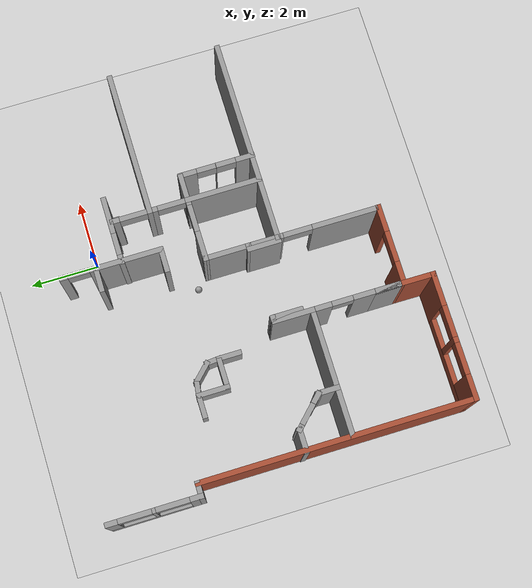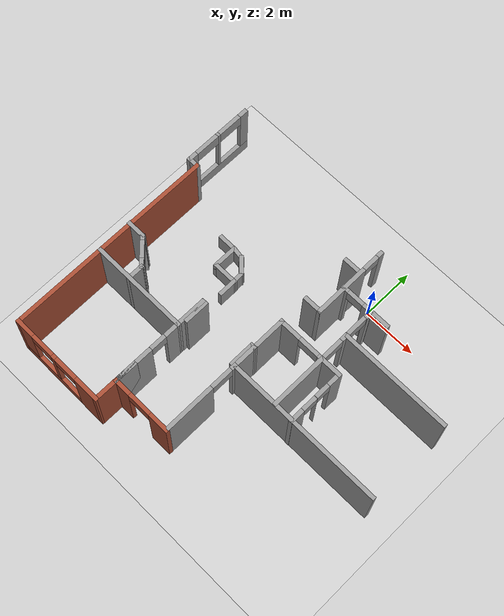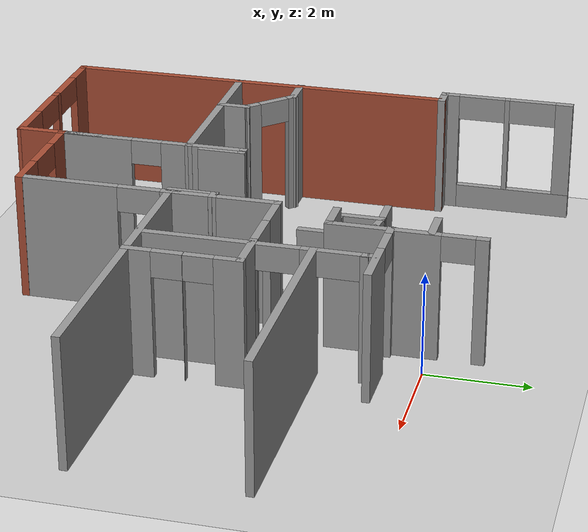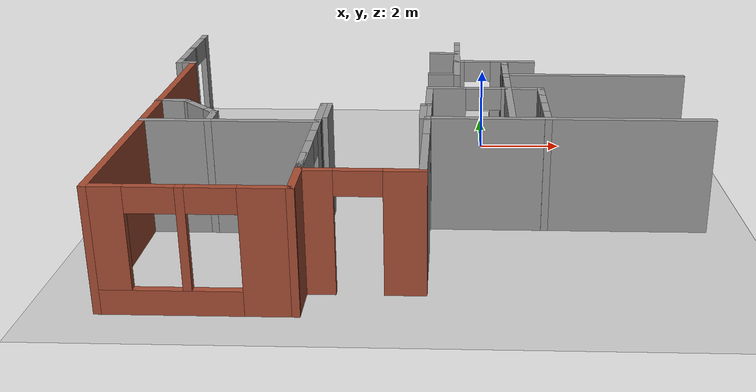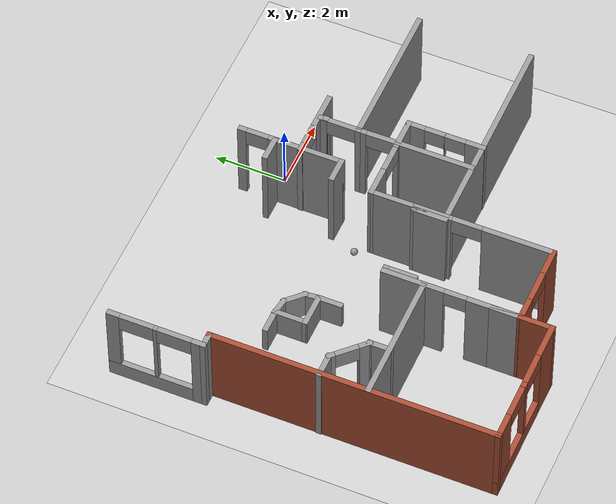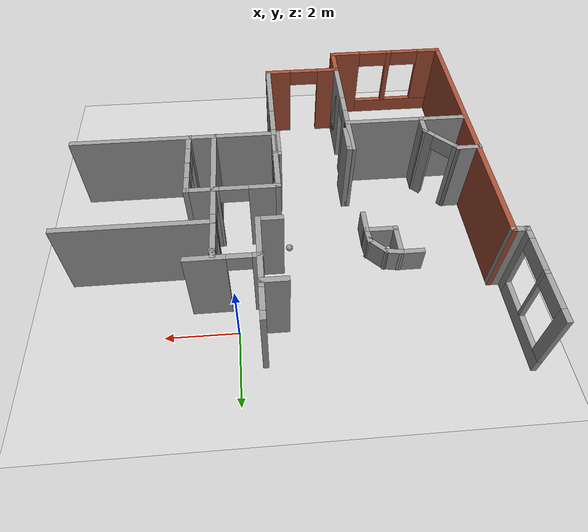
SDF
<sdf version="1.6">
 <world name="default">
  <model name="ground_plane">
   <static>1</static>
   <link name="link">
    <collision name="collision">
     <geometry><plane><normal>0 0 1</normal><size>100 100</size></plane></geometry>
     <surface><friction><ode><mu>100</mu><mu2>50</mu2></ode></friction></surface>
    </collision>
    <visual name="visual">
     <cast_shadows>0</cast_shadows>
     <geometry><plane><normal>0 0 1</normal><size>100 100</size></plane></geometry>
     <material>
      <script><uri>file://media/materials/scripts/gazebo.material</uri><name>Gazebo/Grey</name></script>
     </material>
    </visual>
   </link>
  </model>
  <model name="Winter_Wren">
   <pose>-1.42891 0.6718 0 0 -0 0</pose>
   <link name="Wall_11">
    <pose>-6.02991 -0.424563 0 0 -0 1.5708</pose>
    <visual name="Wall_11_Visual_0">
     <pose>-1.17844 0 1.25 0 -0 0</pose>
     <geometry><box><size>0.393121 0.15 2.5</size></box></geometry>
     <material>
      <script><uri>file://media/materials/scripts/gazebo.material</uri><name>Gazebo/Grey</name></script>
      <ambient>1 1 1 1</ambient>
     </material>
     <meta><layer>0</layer></meta>
    </visual>
    <collision name="Wall_11_Collision_0">
     <geometry><box><size>0.393121 0.15 2.5</size></box></geometry>
     <pose>-1.17844 0 1.25 0 -0 0</pose>
    </collision>
    <visual name="Wall_11_Visual_1">
     <pose>0.19656 0 0.25 0 -0 0</pose>
     <geometry><box><size>2.35688 0.15 0.5</size></box></geometry>
     <material>
      <script><uri>file://media/materials/scripts/gazebo.material</uri><name>Gazebo/Grey</name></script>
      <ambient>1 1 1 1</ambient>
     </material>
     <meta><layer>0</layer></meta>
    </visual>
    <collision name="Wall_11_Collision_1">
     <geometry><box><size>2.35688 0.15 0.5</size></box></geometry>
     <pose>0.19656 0 0.25 0 -0 0</pose>
    </collision>
    <visual name="Wall_11_Visual_2">
     <pose>0.019006 0 1.5 0 -0 0</pose>
     <geometry><box><size>0.101771 0.15 2</size></box></geometry>
     <material>
      <script><uri>file://media/materials/scripts/gazebo.material</uri><name>Gazebo/Grey</name></script>
      <ambient>1 1 1 1</ambient>
     </material>
     <meta><layer>0</layer></meta>
    </visual>
    <collision name="Wall_11_Collision_2">
     <geometry><box><size>0.101771 0.15 2</size></box></geometry>
     <pose>0.019006 0 1.5 0 -0 0</pose>
    </collision>
    <visual name="Wall_11_Visual_3">
     <pose>1.19745 0 1.5 0 -0 0</pose>
     <geometry><box><size>0.355108 0.15 2</size></box></geometry>
     <material>
      <script><uri>file://media/materials/scripts/gazebo.material</uri><name>Gazebo/Grey</name></script>
      <ambient>1 1 1 1</ambient>
     </material>
     <meta><layer>0</layer></meta>
    </visual>
    <collision name="Wall_11_Collision_3">
     <geometry><box><size>0.355108 0.15 2</size></box></geometry>
     <pose>1.19745 0 1.5 0 -0 0</pose>
    </collision>
    <visual name="Wall_11_Visual_4">
     <pose>-0.506879 0 2.25 0 -0 0</pose>
     <geometry><box><size>0.95 0.15 0.5</size></box></geometry>
     <material>
      <script><uri>file://media/materials/scripts/gazebo.material</uri><name>Gazebo/Grey</name></script>
      <ambient>1 1 1 1</ambient>
     </material>
     <meta><layer>0</layer></meta>
    </visual>
    <collision name="Wall_11_Collision_4">
     <geometry><box><size>0.95 0.15 0.5</size></box></geometry>
     <pose>-0.506879 0 2.25 0 -0 0</pose>
    </collision>
    <visual name="Wall_11_Visual_5">
     <pose>0.544892 0 2.25 0 -0 0</pose>
     <geometry><box><size>0.95 0.15 0.5</size></box></geometry>
     <material>
      <script><uri>file://media/materials/scripts/gazebo.material</uri><name>Gazebo/Grey</name></script>
      <ambient>1 1 1 1</ambient>
     </material>
     <meta><layer>0</layer></meta>
    </visual>
    <collision name="Wall_11_Collision_5">
     <geometry><box><size>0.95 0.15 0.5</size></box></geometry>
     <pose>0.544892 0 2.25 0 -0 0</pose>
    </collision>
   </link>
   <link name="Wall_2">
    <pose>-3.87991 -9.57456 0 0 -0 3.14159</pose>
    <visual name="Wall_2_Visual_0">
     <pose>-1.37369 0 1.25 0 -0 0</pose>
     <geometry><box><size>1.00262 0.15 2.5</size></box></geometry>
     <material>
      <script><uri>file://media/materials/scripts/gazebo.material</uri><name>Gazebo/Bricks</name></script>
      <ambient>1 1 1 1</ambient>
     </material>
     <meta><layer>0</layer></meta>
    </visual>
    <collision name="Wall_2_Collision_0">
     <geometry><box><size>1.00262 0.15 2.5</size></box></geometry>
     <pose>-1.37369 0 1.25 0 -0 0</pose>
    </collision>
    <visual name="Wall_2_Visual_1">
     <pose>0.50131 0 0.25 0 -0 0</pose>
     <geometry><box><size>2.74738 0.15 0.5</size></box></geometry>
     <material>
      <script><uri>file://media/materials/scripts/gazebo.material</uri><name>Gazebo/Bricks</name></script>
      <ambient>1 1 1 1</ambient>
     </material>
     <meta><layer>0</layer></meta>
    </visual>
    <collision name="Wall_2_Collision_1">
     <geometry><box><size>2.74738 0.15 0.5</size></box></geometry>
     <pose>0.50131 0 0.25 0 -0 0</pose>
    </collision>
    <visual name="Wall_2_Visual_2">
     <pose>0.12171 0 1.5 0 -0 0</pose>
     <geometry><box><size>0.16218 0.15 2</size></box></geometry>
     <material>
      <script><uri>file://media/materials/scripts/gazebo.material</uri><name>Gazebo/Bricks</name></script>
      <ambient>1 1 1 1</ambient>
     </material>
     <meta><layer>0</layer></meta>
    </visual>
    <collision name="Wall_2_Collision_2">
     <geometry><box><size>0.16218 0.15 2</size></box></geometry>
     <pose>0.12171 0 1.5 0 -0 0</pose>
    </collision>
    <visual name="Wall_2_Visual_3">
     <pose>1.4954 0 1.5 0 -0 0</pose>
     <geometry><box><size>0.759201 0.15 2</size></box></geometry>
     <material>
      <script><uri>file://media/materials/scripts/gazebo.material</uri><name>Gazebo/Bricks</name></script>
      <ambient>1 1 1 1</ambient>
     </material>
     <meta><layer>0</layer></meta>
    </visual>
    <collision name="Wall_2_Collision_3">
     <geometry><box><size>0.759201 0.15 2</size></box></geometry>
     <pose>1.4954 0 1.5 0 -0 0</pose>
    </collision>
    <visual name="Wall_2_Visual_4">
     <pose>-0.41588 0 2.25 0 -0 0</pose>
     <geometry><box><size>0.913 0.15 0.5</size></box></geometry>
     <material>
      <script><uri>file://media/materials/scripts/gazebo.material</uri><name>Gazebo/Bricks</name></script>
      <ambient>1 1 1 1</ambient>
     </material>
     <meta><layer>0</layer></meta>
    </visual>
    <collision name="Wall_2_Collision_4">
     <geometry><box><size>0.913 0.15 0.5</size></box></geometry>
     <pose>-0.41588 0 2.25 0 -0 0</pose>
    </collision>
    <visual name="Wall_2_Visual_5">
     <pose>0.659299 0 2.25 0 -0 0</pose>
     <geometry><box><size>0.913 0.15 0.5</size></box></geometry>
     <material>
      <script><uri>file://media/materials/scripts/gazebo.material</uri><name>Gazebo/Bricks</name></script>
      <ambient>1 1 1 1</ambient>
     </material>
     <meta><layer>0</layer></meta>
    </visual>
    <collision name="Wall_2_Collision_5">
     <geometry><box><size>0.913 0.15 0.5</size></box></geometry>
     <pose>0.659299 0 2.25 0 -0 0</pose>
    </collision>
   </link>
   <link name="Wall_25">
    <collision name="Wall_25_Collision">
     <geometry><box><size>6 0.15 2.5</size></box></geometry>
     <pose>0 0 1.25 0 -0 0</pose>
    </collision>
    <visual name="Wall_25_Visual">
     <pose>0 0 1.25 0 -0 0</pose>
     <geometry><box><size>6 0.15 2.5</size></box></geometry>
     <material>
      <script><uri>file://media/materials/scripts/gazebo.material</uri><name>Gazebo/Grey</name></script>
      <ambient>1 1 1 1</ambient>
     </material>
     <meta><layer>0</layer></meta>
    </visual>
    <pose>3.09509 -5.77456 0 0 -0 3.14159</pose>
   </link>
   <link name="Wall_27">
    <pose>0.170093 -7.19956 0 0 0 -1.5708</pose>
    <visual name="Wall_27_Visual_0">
     <pose>-1.38255 0 1.25 0 -0 0</pose>
     <geometry><box><size>0.23489 0.15 2.5</size></box></geometry>
     <material>
      <script><uri>file://media/materials/scripts/gazebo.material</uri><name>Gazebo/Grey</name></script>
      <ambient>1 1 1 1</ambient>
     </material>
     <meta><layer>0</layer></meta>
    </visual>
    <collision name="Wall_27_Collision_0">
     <geometry><box><size>0.23489 0.15 2.5</size></box></geometry>
     <pose>-1.38255 0 1.25 0 -0 0</pose>
    </collision>
    <visual name="Wall_27_Visual_1">
     <pose>0.537199 0 1.25 0 -0 0</pose>
     <geometry><box><size>1.9256 0.15 2.5</size></box></geometry>
     <material>
      <script><uri>file://media/materials/scripts/gazebo.material</uri><name>Gazebo/Grey</name></script>
      <ambient>1 1 1 1</ambient>
     </material>
     <meta><layer>0</layer></meta>
    </visual>
    <collision name="Wall_27_Collision_1">
     <geometry><box><size>1.9256 0.15 2.5</size></box></geometry>
     <pose>0.537199 0 1.25 0 -0 0</pose>
    </collision>
    <visual name="Wall_27_Visual_2">
     <pose>-0.845356 0 2.25 0 -0 0</pose>
     <geometry><box><size>0.839509 0.15 0.5</size></box></geometry>
     <material>
      <script><uri>file://media/materials/scripts/gazebo.material</uri><name>Gazebo/Grey</name></script>
      <ambient>1 1 1 1</ambient>
     </material>
     <meta><layer>0</layer></meta>
    </visual>
    <collision name="Wall_27_Collision_2">
     <geometry><box><size>0.839509 0.15 0.5</size></box></geometry>
     <pose>-0.845356 0 2.25 0 -0 0</pose>
    </collision>
   </link>
   <link name="Wall_29">
    <collision name="Wall_29_Collision">
     <geometry><box><size>1.00068 0.15 2.5</size></box></geometry>
     <pose>0 0 1.25 0 -0 0</pose>
    </collision>
    <visual name="Wall_29_Visual">
     <pose>0 0 1.25 0 -0 0</pose>
     <geometry><box><size>1.00068 0.15 2.5</size></box></geometry>
     <material>
      <script><uri>file://media/materials/scripts/gazebo.material</uri><name>Gazebo/Bricks</name></script>
      <ambient>1 1 1 1</ambient>
     </material>
     <meta><layer>0</layer></meta>
    </visual>
    <pose>-2.0775 -9.14968 0 0 -0 1.56513</pose>
   </link>
   <link name="Wall_30">
    <pose>-0.950092 -8.7248 0 0 -0 0</pose>
    <visual name="Wall_30_Visual_0">
     <pose>-0.851077 0 1.25 0 -0 0</pose>
     <geometry><box><size>0.697846 0.15 2.5</size></box></geometry>
     <material>
      <script><uri>file://media/materials/scripts/gazebo.material</uri><name>Gazebo/Bricks</name></script>
      <ambient>1 1 1 1</ambient>
     </material>
     <meta><layer>0</layer></meta>
    </visual>
    <collision name="Wall_30_Collision_0">
     <geometry><box><size>0.697846 0.15 2.5</size></box></geometry>
     <pose>-0.851077 0 1.25 0 -0 0</pose>
    </collision>
    <visual name="Wall_30_Visual_1">
     <pose>0.798923 0 1.25 0 -0 0</pose>
     <geometry><box><size>0.802154 0.15 2.5</size></box></geometry>
     <material>
      <script><uri>file://media/materials/scripts/gazebo.material</uri><name>Gazebo/Bricks</name></script>
      <ambient>1 1 1 1</ambient>
     </material>
     <meta><layer>0</layer></meta>
    </visual>
    <collision name="Wall_30_Collision_1">
     <geometry><box><size>0.802154 0.15 2.5</size></box></geometry>
     <pose>0.798923 0 1.25 0 -0 0</pose>
    </collision>
    <visual name="Wall_30_Visual_2">
     <pose>-0.052154 0 2.25 0 -0 0</pose>
     <geometry><box><size>0.9 0.15 0.5</size></box></geometry>
     <material>
      <script><uri>file://media/materials/scripts/gazebo.material</uri><name>Gazebo/Bricks</name></script>
      <ambient>1 1 1 1</ambient>
     </material>
     <meta><layer>0</layer></meta>
    </visual>
    <collision name="Wall_30_Collision_2">
     <geometry><box><size>0.9 0.15 0.5</size></box></geometry>
     <pose>-0.052154 0 2.25 0 -0 0</pose>
    </collision>
   </link>
   <link name="Wall_32">
    <collision name="Wall_32_Collision">
     <geometry><box><size>3.75 0.15 2.5</size></box></geometry>
     <pose>0 0 1.25 0 -0 0</pose>
    </collision>
    <visual name="Wall_32_Visual">
     <pose>0 0 1.25 0 -0 0</pose>
     <geometry><box><size>3.75 0.15 2.5</size></box></geometry>
     <material>
      <script><uri>file://media/materials/scripts/gazebo.material</uri><name>Gazebo/Grey</name></script>
      <ambient>1 1 1 1</ambient>
     </material>
     <meta><layer>0</layer></meta>
    </visual>
    <pose>-3.87271 -6.0748 0 0 -0 0</pose>
   </link>
   <link name="Wall_33">
    <pose>-2.0739 -7.3998 0 0 0 -1.5717</pose>
    <visual name="Wall_33_Visual_0">
     <pose>-1.08046 0 1.25 0 -0 0</pose>
     <geometry><box><size>0.639083 0.15 2.5</size></box></geometry>
     <material>
      <script><uri>file://media/materials/scripts/gazebo.material</uri><name>Gazebo/Grey</name></script>
      <ambient>1 1 1 1</ambient>
     </material>
     <meta><layer>0</layer></meta>
    </visual>
    <collision name="Wall_33_Collision_0">
     <geometry><box><size>0.639083 0.15 2.5</size></box></geometry>
     <pose>-1.08046 0 1.25 0 -0 0</pose>
    </collision>
    <visual name="Wall_33_Visual_1">
     <pose>0.625881 0 1.25 0 -0 0</pose>
     <geometry><box><size>1.54824 0.15 2.5</size></box></geometry>
     <material>
      <script><uri>file://media/materials/scripts/gazebo.material</uri><name>Gazebo/Grey</name></script>
      <ambient>1 1 1 1</ambient>
     </material>
     <meta><layer>0</layer></meta>
    </visual>
    <collision name="Wall_33_Collision_1">
     <geometry><box><size>1.54824 0.15 2.5</size></box></geometry>
     <pose>0.625881 0 1.25 0 -0 0</pose>
    </collision>
    <visual name="Wall_33_Visual_2">
     <pose>0.943444 0 1.25 0 -0 0</pose>
     <geometry><box><size>0.913113 0.15 2.5</size></box></geometry>
     <material>
      <script><uri>file://media/materials/scripts/gazebo.material</uri><name>Gazebo/Grey</name></script>
      <ambient>1 1 1 1</ambient>
     </material>
     <meta><layer>0</layer></meta>
    </visual>
    <collision name="Wall_33_Collision_2">
     <geometry><box><size>0.913113 0.15 2.5</size></box></geometry>
     <pose>0.943444 0 1.25 0 -0 0</pose>
    </collision>
    <visual name="Wall_33_Visual_3">
     <pose>-0.454686 0 2.25 0 -0 0</pose>
     <geometry><box><size>0.612462 0.15 0.5</size></box></geometry>
     <material>
      <script><uri>file://media/materials/scripts/gazebo.material</uri><name>Gazebo/Grey</name></script>
      <ambient>1 1 1 1</ambient>
     </material>
     <meta><layer>0</layer></meta>
    </visual>
    <collision name="Wall_33_Collision_3">
     <geometry><box><size>0.612462 0.15 0.5</size></box></geometry>
     <pose>-0.454686 0 2.25 0 -0 0</pose>
    </collision>
   </link>
   <link name="Wall_37">
    <collision name="Wall_37_Collision">
     <geometry><box><size>0.75 0.15 2.5</size></box></geometry>
     <pose>0 0 1.25 0 -0 0</pose>
    </collision>
    <visual name="Wall_37_Visual">
     <pose>0 0 1.25 0 -0 0</pose>
     <geometry><box><size>0.75 0.15 2.5</size></box></geometry>
     <material>
      <script><uri>file://media/materials/scripts/gazebo.material</uri><name>Gazebo/Grey</name></script>
      <ambient>1 1 1 1</ambient>
     </material>
     <meta><layer>0</layer></meta>
    </visual>
    <pose>-5.40154 -4.75784 0 0 -0 0</pose>
   </link>
   <link name="Wall_38">
    <pose>-4.71263 -5.14675 0 0 0 -0.785398</pose>
    <visual name="Wall_38_Visual_0">
     <pose>-0.510733 0 1.25 0 -0 0</pose>
     <geometry><box><size>0.228534 0.15 2.5</size></box></geometry>
     <material>
      <script><uri>file://media/materials/scripts/gazebo.material</uri><name>Gazebo/Grey</name></script>
      <ambient>1 1 1 1</ambient>
     </material>
     <meta><layer>0</layer></meta>
    </visual>
    <collision name="Wall_38_Collision_0">
     <geometry><box><size>0.228534 0.15 2.5</size></box></geometry>
     <pose>-0.510733 0 1.25 0 -0 0</pose>
    </collision>
    <visual name="Wall_38_Visual_1">
     <pose>0.438619 0 1.25 0 -0 0</pose>
     <geometry><box><size>0.372763 0.15 2.5</size></box></geometry>
     <material>
      <script><uri>file://media/materials/scripts/gazebo.material</uri><name>Gazebo/Grey</name></script>
      <ambient>1 1 1 1</ambient>
     </material>
     <meta><layer>0</layer></meta>
    </visual>
    <collision name="Wall_38_Collision_1">
     <geometry><box><size>0.372763 0.15 2.5</size></box></geometry>
     <pose>0.438619 0 1.25 0 -0 0</pose>
    </collision>
    <visual name="Wall_38_Visual_2">
     <pose>-0.072114 0 2.25 0 -0 0</pose>
     <geometry><box><size>0.648703 0.15 0.5</size></box></geometry>
     <material>
      <script><uri>file://media/materials/scripts/gazebo.material</uri><name>Gazebo/Grey</name></script>
      <ambient>1 1 1 1</ambient>
     </material>
     <meta><layer>0</layer></meta>
    </visual>
    <collision name="Wall_38_Collision_2">
     <geometry><box><size>0.648703 0.15 0.5</size></box></geometry>
     <pose>-0.072114 0 2.25 0 -0 0</pose>
    </collision>
   </link>
   <link name="Wall_39">
    <collision name="Wall_39_Collision">
     <geometry><box><size>0.16 0.15 2.5</size></box></geometry>
     <pose>0 0 1.25 0 -0 0</pose>
    </collision>
    <visual name="Wall_39_Visual">
     <pose>0 0 1.25 0 -0 0</pose>
     <geometry><box><size>0.16 0.15 2.5</size></box></geometry>
     <material>
      <script><uri>file://media/materials/scripts/gazebo.material</uri><name>Gazebo/Grey</name></script>
      <ambient>1 1 1 1</ambient>
     </material>
     <meta><layer>0</layer></meta>
    </visual>
    <pose>-4.31891 -5.53573 0 0 0 -0.014988</pose>
   </link>
   <link name="Wall_4">
    <collision name="Wall_4_Collision">
     <geometry><box><size>8 0.15 2.5</size></box></geometry>
     <pose>0 0 1.25 0 -0 0</pose>
    </collision>
    <visual name="Wall_4_Visual">
     <pose>0 0 1.25 0 -0 0</pose>
     <geometry><box><size>8 0.15 2.5</size></box></geometry>
     <material>
      <script><uri>file://media/materials/scripts/gazebo.material</uri><name>Gazebo/Bricks</name></script>
      <ambient>1 1 1 1</ambient>
     </material>
     <meta><layer>0</layer></meta>
    </visual>
    <pose>-5.67991 -5.64956 0 0 -0 1.5708</pose>
   </link>
   <link name="Wall_40">
    <collision name="Wall_40_Collision">
     <geometry><box><size>0.69 0.15 2.5</size></box></geometry>
     <pose>0 0 1.25 0 -0 0</pose>
    </collision>
    <visual name="Wall_40_Visual">
     <pose>0 0 1.25 0 -0 0</pose>
     <geometry><box><size>0.69 0.15 2.5</size></box></geometry>
     <material>
      <script><uri>file://media/materials/scripts/gazebo.material</uri><name>Gazebo/Grey</name></script>
      <ambient>1 1 1 1</ambient>
     </material>
     <meta><layer>0</layer></meta>
    </visual>
    <pose>-4.31409 -5.8058 0 0 0 -1.5708</pose>
   </link>
   <link name="Wall_42">
    <collision name="Wall_42_Collision">
     <geometry><box><size>1.25 0.15 2.5</size></box></geometry>
     <pose>0 0 1.25 0 -0 0</pose>
    </collision>
    <visual name="Wall_42_Visual">
     <pose>0 0 1.25 0 -0 0</pose>
     <geometry><box><size>1.25 0.15 2.5</size></box></geometry>
     <material>
      <script><uri>file://media/materials/scripts/gazebo.material</uri><name>Gazebo/Grey</name></script>
      <ambient>1 1 1 1</ambient>
     </material>
     <meta><layer>0</layer></meta>
    </visual>
    <pose>-2.07271 -5.5248 0 0 -0 1.5708</pose>
   </link>
   <link name="Wall_43">
    <collision name="Wall_43_Collision">
     <geometry><box><size>0.257561 0.15 2.5</size></box></geometry>
     <pose>0 0 1.25 0 -0 0</pose>
    </collision>
    <visual name="Wall_43_Visual">
     <pose>0 0 1.25 0 -0 0</pose>
     <geometry><box><size>0.257561 0.15 2.5</size></box></geometry>
     <material>
      <script><uri>file://media/materials/scripts/gazebo.material</uri><name>Gazebo/Grey</name></script>
      <ambient>1 1 1 1</ambient>
     </material>
     <meta><layer>0</layer></meta>
    </visual>
    <pose>-2.0189 -4.9748 0 0 0 -1.1e-05</pose>
   </link>
   <link name="Wall_44">
    <collision name="Wall_44_Collision">
     <geometry><box><size>0.95 0.15 2.5</size></box></geometry>
     <pose>0 0 1.25 0 -0 0</pose>
    </collision>
    <visual name="Wall_44_Visual">
     <pose>0 0 1.25 0 -0 0</pose>
     <geometry><box><size>0.95 0.15 2.5</size></box></geometry>
     <material>
      <script><uri>file://media/materials/scripts/gazebo.material</uri><name>Gazebo/Grey</name></script>
      <ambient>1 1 1 1</ambient>
     </material>
     <meta><layer>0</layer></meta>
    </visual>
    <pose>-1.96509 -5.3748 0 0 0 -1.5708</pose>
   </link>
   <link name="Wall_46">
    <collision name="Wall_46_Collision">
     <geometry><box><size>1 0.15 2.5</size></box></geometry>
     <pose>0 0 1.25 0 -0 0</pose>
    </collision>
    <visual name="Wall_46_Visual">
     <pose>0 0 1.25 0 -0 0</pose>
     <geometry><box><size>1 0.15 2.5</size></box></geometry>
     <material>
      <script><uri>file://media/materials/scripts/gazebo.material</uri><name>Gazebo/Grey</name></script>
      <ambient>1 1 1 1</ambient>
     </material>
     <meta><layer>0</layer></meta>
    </visual>
    <pose>0.170093 -5.34956 0 0 -0 1.5708</pose>
   </link>
   <link name="Wall_47">
    <collision name="Wall_47_Collision">
     <geometry><box><size>0.250185 0.15 2.5</size></box></geometry>
     <pose>0 0 1.25 0 -0 0</pose>
    </collision>
    <visual name="Wall_47_Visual">
     <pose>0 0 1.25 0 -0 0</pose>
     <geometry><box><size>0.250185 0.15 2.5</size></box></geometry>
     <material>
      <script><uri>file://media/materials/scripts/gazebo.material</uri><name>Gazebo/Grey</name></script>
      <ambient>1 1 1 1</ambient>
     </material>
     <meta><layer>0</layer></meta>
    </visual>
    <pose>0.12 -4.92468 0 0 0 -3.13924</pose>
   </link>
   <link name="Wall_48">
    <collision name="Wall_48_Collision">
     <geometry><box><size>1 0.15 2.5</size></box></geometry>
     <pose>0 0 1.25 0 -0 0</pose>
    </collision>
    <visual name="Wall_48_Visual">
     <pose>0 0 1.25 0 -0 0</pose>
     <geometry><box><size>1 0.15 2.5</size></box></geometry>
     <material>
      <script><uri>file://media/materials/scripts/gazebo.material</uri><name>Gazebo/Grey</name></script>
      <ambient>1 1 1 1</ambient>
     </material>
     <meta><layer>0</layer></meta>
    </visual>
    <pose>0.069908 -5.3498 0 0 0 -1.5708</pose>
   </link>
   <link name="Wall_55">
    <collision name="Wall_55_Collision">
     <geometry><box><size>0.15 0.15 2.5</size></box></geometry>
     <pose>0 0 1.25 0 -0 0</pose>
    </collision>
    <visual name="Wall_55_Visual">
     <pose>0 0 1.25 0 -0 0</pose>
     <geometry><box><size>0.15 0.15 2.5</size></box></geometry>
     <material>
      <script><uri>file://media/materials/scripts/gazebo.material</uri><name>Gazebo/Grey</name></script>
      <ambient>1 1 1 1</ambient>
     </material>
     <meta><layer>0</layer></meta>
    </visual>
    <pose>1.9464 -1.64518 0 0 -0 0</pose>
   </link>
   <link name="Wall_59">
    <pose>1.92591 -3.6308 0 0 -0 1.5708</pose>
    <visual name="Wall_59_Visual_0">
     <pose>-1.0879 0 1.25 0 -0 0</pose>
     <geometry><box><size>2.22419 0.15 2.5</size></box></geometry>
     <material>
      <script><uri>file://media/materials/scripts/gazebo.material</uri><name>Gazebo/Grey</name></script>
      <ambient>1 1 1 1</ambient>
     </material>
     <meta><layer>0</layer></meta>
    </visual>
    <collision name="Wall_59_Collision_0">
     <geometry><box><size>2.22419 0.15 2.5</size></box></geometry>
     <pose>-1.0879 0 1.25 0 -0 0</pose>
    </collision>
    <visual name="Wall_59_Visual_1">
     <pose>0.971683 0 1.25 0 -0 0</pose>
     <geometry><box><size>0.291578 0.15 2.5</size></box></geometry>
     <material>
      <script><uri>file://media/materials/scripts/gazebo.material</uri><name>Gazebo/Grey</name></script>
      <ambient>1 1 1 1</ambient>
     </material>
     <meta><layer>0</layer></meta>
    </visual>
    <collision name="Wall_59_Collision_1">
     <geometry><box><size>0.291578 0.15 2.5</size></box></geometry>
     <pose>0.971683 0 1.25 0 -0 0</pose>
    </collision>
    <visual name="Wall_59_Visual_2">
     <pose>2.06337 0 1.25 0 -0 0</pose>
     <geometry><box><size>0.273265 0.15 2.5</size></box></geometry>
     <material>
      <script><uri>file://media/materials/scripts/gazebo.material</uri><name>Gazebo/Grey</name></script>
      <ambient>1 1 1 1</ambient>
     </material>
     <meta><layer>0</layer></meta>
    </visual>
    <collision name="Wall_59_Collision_2">
     <geometry><box><size>0.273265 0.15 2.5</size></box></geometry>
     <pose>2.06337 0 1.25 0 -0 0</pose>
    </collision>
    <visual name="Wall_59_Visual_3">
     <pose>0.425044 0 2.25 0 -0 0</pose>
     <geometry><box><size>0.801701 0.15 0.5</size></box></geometry>
     <material>
      <script><uri>file://media/materials/scripts/gazebo.material</uri><name>Gazebo/Grey</name></script>
      <ambient>1 1 1 1</ambient>
     </material>
     <meta><layer>0</layer></meta>
    </visual>
    <collision name="Wall_59_Collision_3">
     <geometry><box><size>0.801701 0.15 0.5</size></box></geometry>
     <pose>0.425044 0 2.25 0 -0 0</pose>
    </collision>
    <visual name="Wall_59_Visual_4">
     <pose>1.5221 0 2.25 0 -0 0</pose>
     <geometry><box><size>0.809263 0.15 0.5</size></box></geometry>
     <material>
      <script><uri>file://media/materials/scripts/gazebo.material</uri><name>Gazebo/Grey</name></script>
      <ambient>1 1 1 1</ambient>
     </material>
     <meta><layer>0</layer></meta>
    </visual>
    <collision name="Wall_59_Collision_4">
     <geometry><box><size>0.809263 0.15 0.5</size></box></geometry>
     <pose>1.5221 0 2.25 0 -0 0</pose>
    </collision>
   </link>
   <link name="Wall_61">
    <collision name="Wall_61_Collision">
     <geometry><box><size>4.25 0.15 2.5</size></box></geometry>
     <pose>0 0 1.25 0 -0 0</pose>
    </collision>
    <visual name="Wall_61_Visual">
     <pose>0 0 1.25 0 -0 0</pose>
     <geometry><box><size>4.25 0.15 2.5</size></box></geometry>
     <material>
      <script><uri>file://media/materials/scripts/gazebo.material</uri><name>Gazebo/Grey</name></script>
      <ambient>1 1 1 1</ambient>
     </material>
     <meta><layer>0</layer></meta>
    </visual>
    <pose>3.97547 -2.57564 0 0 -0 0</pose>
   </link>
   <link name="Wall_63">
    <pose>1.41241 -3.6858 0 0 -0 3.14159</pose>
    <visual name="Wall_63_Visual_0">
     <pose>-0.837475 0 1.25 0 -0 0</pose>
     <geometry><box><size>0.96205 0.15 2.5</size></box></geometry>
     <material>
      <script><uri>file://media/materials/scripts/gazebo.material</uri><name>Gazebo/Grey</name></script>
      <ambient>1 1 1 1</ambient>
     </material>
     <meta><layer>0</layer></meta>
    </visual>
    <collision name="Wall_63_Collision_0">
     <geometry><box><size>0.96205 0.15 2.5</size></box></geometry>
     <pose>-0.837475 0 1.25 0 -0 0</pose>
    </collision>
    <visual name="Wall_63_Visual_1">
     <pose>0.878095 0 1.25 0 -0 0</pose>
     <geometry><box><size>0.88081 0.15 2.5</size></box></geometry>
     <material>
      <script><uri>file://media/materials/scripts/gazebo.material</uri><name>Gazebo/Grey</name></script>
      <ambient>1 1 1 1</ambient>
     </material>
     <meta><layer>0</layer></meta>
    </visual>
    <collision name="Wall_63_Collision_1">
     <geometry><box><size>0.88081 0.15 2.5</size></box></geometry>
     <pose>0.878095 0 1.25 0 -0 0</pose>
    </collision>
    <visual name="Wall_63_Visual_2">
     <pose>0.04062 0 2.25 0 -0 0</pose>
     <geometry><box><size>0.79414 0.15 0.5</size></box></geometry>
     <material>
      <script><uri>file://media/materials/scripts/gazebo.material</uri><name>Gazebo/Grey</name></script>
      <ambient>1 1 1 1</ambient>
     </material>
     <meta><layer>0</layer></meta>
    </visual>
    <collision name="Wall_63_Collision_2">
     <geometry><box><size>0.79414 0.15 0.5</size></box></geometry>
     <pose>0.04062 0 2.25 0 -0 0</pose>
    </collision>
   </link>
   <link name="Wall_65">
    <collision name="Wall_65_Collision">
     <geometry><box><size>1.38952 0.15 2.5</size></box></geometry>
     <pose>0 0 1.25 0 -0 0</pose>
    </collision>
    <visual name="Wall_65_Visual">
     <pose>0 0 1.25 0 -0 0</pose>
     <geometry><box><size>1.38952 0.15 2.5</size></box></geometry>
     <material>
      <script><uri>file://media/materials/scripts/gazebo.material</uri><name>Gazebo/Grey</name></script>
      <ambient>1 1 1 1</ambient>
     </material>
     <meta><layer>0</layer></meta>
    </visual>
    <pose>0.1695 -4.30518 0 0 0 -1.56984</pose>
   </link>
   <link name="Wall_67">
    <pose>2.65591 -4.7358 0 0 0 -1.5708</pose>
    <visual name="Wall_67_Visual_0">
     <pose>-0.851031 0 1.25 0 -0 0</pose>
     <geometry><box><size>0.547938 0.15 2.5</size></box></geometry>
     <material>
      <script><uri>file://media/materials/scripts/gazebo.material</uri><name>Gazebo/Grey</name></script>
      <ambient>1 1 1 1</ambient>
     </material>
     <meta><layer>0</layer></meta>
    </visual>
    <collision name="Wall_67_Collision_0">
     <geometry><box><size>0.547938 0.15 2.5</size></box></geometry>
     <pose>-0.851031 0 1.25 0 -0 0</pose>
    </collision>
    <visual name="Wall_67_Visual_1">
     <pose>-0.01364 0 1.25 0 -0 0</pose>
     <geometry><box><size>0.007372 0.15 2.5</size></box></geometry>
     <material>
      <script><uri>file://media/materials/scripts/gazebo.material</uri><name>Gazebo/Grey</name></script>
      <ambient>1 1 1 1</ambient>
     </material>
     <meta><layer>0</layer></meta>
    </visual>
    <collision name="Wall_67_Collision_1">
     <geometry><box><size>0.007372 0.15 2.5</size></box></geometry>
     <pose>-0.01364 0 1.25 0 -0 0</pose>
    </collision>
    <visual name="Wall_67_Visual_2">
     <pose>0.844952 0 1.25 0 -0 0</pose>
     <geometry><box><size>0.560096 0.15 2.5</size></box></geometry>
     <material>
      <script><uri>file://media/materials/scripts/gazebo.material</uri><name>Gazebo/Grey</name></script>
      <ambient>1 1 1 1</ambient>
     </material>
     <meta><layer>0</layer></meta>
    </visual>
    <collision name="Wall_67_Collision_2">
     <geometry><box><size>0.560096 0.15 2.5</size></box></geometry>
     <pose>0.844952 0 1.25 0 -0 0</pose>
    </collision>
    <visual name="Wall_67_Visual_3">
     <pose>-0.297194 0 2.25 0 -0 0</pose>
     <geometry><box><size>0.559735 0.15 0.5</size></box></geometry>
     <material>
      <script><uri>file://media/materials/scripts/gazebo.material</uri><name>Gazebo/Grey</name></script>
      <ambient>1 1 1 1</ambient>
     </material>
     <meta><layer>0</layer></meta>
    </visual>
    <collision name="Wall_67_Collision_3">
     <geometry><box><size>0.559735 0.15 0.5</size></box></geometry>
     <pose>-0.297194 0 2.25 0 -0 0</pose>
    </collision>
    <visual name="Wall_67_Visual_4">
     <pose>0.277475 0 2.25 0 -0 0</pose>
     <geometry><box><size>0.574858 0.15 0.5</size></box></geometry>
     <material>
      <script><uri>file://media/materials/scripts/gazebo.material</uri><name>Gazebo/Grey</name></script>
      <ambient>1 1 1 1</ambient>
     </material>
     <meta><layer>0</layer></meta>
    </visual>
    <collision name="Wall_67_Collision_4">
     <geometry><box><size>0.574858 0.15 0.5</size></box></geometry>
     <pose>0.277475 0 2.25 0 -0 0</pose>
    </collision>
   </link>
   <link name="Wall_69">
    <collision name="Wall_69_Collision">
     <geometry><box><size>0.75 0.15 0.813</size></box></geometry>
     <pose>0 0 0.4065 0 -0 0</pose>
    </collision>
    <visual name="Wall_69_Visual">
     <pose>0 0 0.4065 0 -0 0</pose>
     <geometry><box><size>0.75 0.15 0.813</size></box></geometry>
     <material>
      <script><uri>file://media/materials/scripts/gazebo.material</uri><name>Gazebo/Grey</name></script>
      <ambient>1 1 1 1</ambient>
     </material>
     <meta><layer>0</layer></meta>
    </visual>
    <pose>-3.50409 -2.4358 0 0 -0 0</pose>
   </link>
   <link name="Wall_70">
    <collision name="Wall_70_Collision">
     <geometry><box><size>1 0.15 0.813</size></box></geometry>
     <pose>0 0 0.4065 0 -0 0</pose>
    </collision>
    <visual name="Wall_70_Visual">
     <pose>0 0 0.4065 0 -0 0</pose>
     <geometry><box><size>1 0.15 0.813</size></box></geometry>
     <material>
      <script><uri>file://media/materials/scripts/gazebo.material</uri><name>Gazebo/Grey</name></script>
      <ambient>1 1 1 1</ambient>
     </material>
     <meta><layer>0</layer></meta>
    </visual>
    <pose>-3.20409 -2.8608 0 0 0 -1.5708</pose>
   </link>
   <link name="Wall_71">
    <collision name="Wall_71_Collision">
     <geometry><box><size>1 0.15 0.813</size></box></geometry>
     <pose>0 0 0.4065 0 -0 0</pose>
    </collision>
    <visual name="Wall_71_Visual">
     <pose>0 0 0.4065 0 -0 0</pose>
     <geometry><box><size>1 0.15 0.813</size></box></geometry>
     <material>
      <script><uri>file://media/materials/scripts/gazebo.material</uri><name>Gazebo/Grey</name></script>
      <ambient>1 1 1 1</ambient>
     </material>
     <meta><layer>0</layer></meta>
    </visual>
    <pose>-2.77909 -3.2858 0 0 -0 0</pose>
   </link>
   <link name="Wall_72">
    <collision name="Wall_72_Collision">
     <geometry><box><size>0.75 0.15 0.813</size></box></geometry>
     <pose>0 0 0.4065 0 -0 0</pose>
    </collision>
    <visual name="Wall_72_Visual">
     <pose>0 0 0.4065 0 -0 0</pose>
     <geometry><box><size>0.75 0.15 0.813</size></box></geometry>
     <material>
      <script><uri>file://media/materials/scripts/gazebo.material</uri><name>Gazebo/Grey</name></script>
      <ambient>1 1 1 1</ambient>
     </material>
     <meta><layer>0</layer></meta>
    </visual>
    <pose>-2.35409 -3.5858 0 0 0 -1.5708</pose>
   </link>
   <link name="Wall_74">
    <collision name="Wall_74_Collision">
     <geometry><box><size>0.552647 0.15 0.813</size></box></geometry>
     <pose>0 0 0.4065 0 -0 0</pose>
    </collision>
    <visual name="Wall_74_Visual">
     <pose>0 0 0.4065 0 -0 0</pose>
     <geometry><box><size>0.552647 0.15 0.813</size></box></geometry>
     <material>
      <script><uri>file://media/materials/scripts/gazebo.material</uri><name>Gazebo/Grey</name></script>
      <ambient>1 1 1 1</ambient>
     </material>
     <meta><layer>0</layer></meta>
    </visual>
    <pose>-3.00509 -2.4663 0 0 0 -0.152083</pose>
   </link>
   <link name="Wall_76">
    <collision name="Wall_76_Collision">
     <geometry><box><size>0.519303 0.15 0.813</size></box></geometry>
     <pose>0 0 0.4065 0 -0 0</pose>
    </collision>
    <visual name="Wall_76_Visual">
     <pose>0 0 0.4065 0 -0 0</pose>
     <geometry><box><size>0.519303 0.15 0.813</size></box></geometry>
     <material>
      <script><uri>file://media/materials/scripts/gazebo.material</uri><name>Gazebo/Grey</name></script>
      <ambient>1 1 1 1</ambient>
     </material>
     <meta><layer>0</layer></meta>
    </visual>
    <pose>-2.36959 -3.1018 0 0 -0 1.65484</pose>
   </link>
   <link name="Wall_78">
    <collision name="Wall_78_Collision">
     <geometry><box><size>0.745384 0.15 0.813</size></box></geometry>
     <pose>0 0 0.4065 0 -0 0</pose>
    </collision>
    <visual name="Wall_78_Visual">
     <pose>0 0 0.4065 0 -0 0</pose>
     <geometry><box><size>0.745384 0.15 0.813</size></box></geometry>
     <material>
      <script><uri>file://media/materials/scripts/gazebo.material</uri><name>Gazebo/Grey</name></script>
      <ambient>1 1 1 1</ambient>
     </material>
     <meta><layer>0</layer></meta>
    </visual>
    <pose>-2.59559 -2.7073 0 0 0 -0.785398</pose>
   </link>
   <link name="Wall_8">
    <collision name="Wall_8_Collision">
     <geometry><box><size>0.5 0.15 2.5</size></box></geometry>
     <pose>0 0 1.25 0 -0 0</pose>
    </collision>
    <visual name="Wall_8_Visual">
     <pose>0 0 1.25 0 -0 0</pose>
     <geometry><box><size>0.5 0.15 2.5</size></box></geometry>
     <material>
      <script><uri>file://media/materials/scripts/gazebo.material</uri><name>Gazebo/Grey</name></script>
      <ambient>1 1 1 1</ambient>
     </material>
     <meta><layer>0</layer></meta>
    </visual>
    <pose>-5.85491 -1.72456 0 0 -0 3.14159</pose>
   </link>
   <link name="Wall_80">
    <collision name="Wall_80_Collision">
     <geometry><box><size>0.75 0.15 2.5</size></box></geometry>
     <pose>0 0 1.25 0 -0 0</pose>
    </collision>
    <visual name="Wall_80_Visual">
     <pose>0 0 1.25 0 -0 0</pose>
     <geometry><box><size>0.75 0.15 2.5</size></box></geometry>
     <material>
      <script><uri>file://media/materials/scripts/gazebo.material</uri><name>Gazebo/Grey</name></script>
      <ambient>1 1 1 1</ambient>
     </material>
     <meta><layer>0</layer></meta>
    </visual>
    <pose>0.475632 -2.57372 0 0 -0 0</pose>
   </link>
   <link name="Wall_81">
    <pose>0.775632 -1.14872 0 0 -0 1.5708</pose>
    <visual name="Wall_81_Visual_0">
     <pose>-0.432796 0 1.25 0 -0 0</pose>
     <geometry><box><size>2.13441 0.15 2.5</size></box></geometry>
     <material>
      <script><uri>file://media/materials/scripts/gazebo.material</uri><name>Gazebo/Grey</name></script>
      <ambient>1 1 1 1</ambient>
     </material>
     <meta><layer>0</layer></meta>
    </visual>
    <collision name="Wall_81_Collision_0">
     <geometry><box><size>2.13441 0.15 2.5</size></box></geometry>
     <pose>-0.432796 0 1.25 0 -0 0</pose>
    </collision>
    <visual name="Wall_81_Visual_1">
     <pose>1.37732 0 1.25 0 -0 0</pose>
     <geometry><box><size>0.245364 0.15 2.5</size></box></geometry>
     <material>
      <script><uri>file://media/materials/scripts/gazebo.material</uri><name>Gazebo/Grey</name></script>
      <ambient>1 1 1 1</ambient>
     </material>
     <meta><layer>0</layer></meta>
    </visual>
    <collision name="Wall_81_Collision_1">
     <geometry><box><size>0.245364 0.15 2.5</size></box></geometry>
     <pose>1.37732 0 1.25 0 -0 0</pose>
    </collision>
    <visual name="Wall_81_Visual_2">
     <pose>0.944522 0 2.25 0 -0 0</pose>
     <geometry><box><size>0.620227 0.15 0.5</size></box></geometry>
     <material>
      <script><uri>file://media/materials/scripts/gazebo.material</uri><name>Gazebo/Grey</name></script>
      <ambient>1 1 1 1</ambient>
     </material>
     <meta><layer>0</layer></meta>
    </visual>
    <collision name="Wall_81_Collision_2">
     <geometry><box><size>0.620227 0.15 0.5</size></box></geometry>
     <pose>0.944522 0 2.25 0 -0 0</pose>
    </collision>
   </link>
   <link name="Wall_84">
    <collision name="Wall_84_Collision">
     <geometry><box><size>0.75 0.15 2.5</size></box></geometry>
     <pose>0 0 1.25 0 -0 0</pose>
    </collision>
    <visual name="Wall_84_Visual">
     <pose>0 0 1.25 0 -0 0</pose>
     <geometry><box><size>0.75 0.15 2.5</size></box></geometry>
     <material>
      <script><uri>file://media/materials/scripts/gazebo.material</uri><name>Gazebo/Grey</name></script>
      <ambient>1 1 1 1</ambient>
     </material>
     <meta><layer>0</layer></meta>
    </visual>
    <pose>0.458682 -0.699222 0 0 -0 3.14159</pose>
   </link>
   <link name="Wall_89">
    <pose>1.67818 -1.43704 0 0 -0 0</pose>
    <visual name="Wall_89_Visual_0">
     <pose>-0.859291 0 1.25 0 -0 0</pose>
     <geometry><box><size>0.281419 0.15 2.5</size></box></geometry>
     <material>
      <script><uri>file://media/materials/scripts/gazebo.material</uri><name>Gazebo/Grey</name></script>
      <ambient>1 1 1 1</ambient>
     </material>
     <meta><layer>0</layer></meta>
    </visual>
    <collision name="Wall_89_Collision_0">
     <geometry><box><size>0.281419 0.15 2.5</size></box></geometry>
     <pose>-0.859291 0 1.25 0 -0 0</pose>
    </collision>
    <visual name="Wall_89_Visual_1">
     <pose>0.458384 0 1.25 0 -0 0</pose>
     <geometry><box><size>1.08323 0.15 2.5</size></box></geometry>
     <material>
      <script><uri>file://media/materials/scripts/gazebo.material</uri><name>Gazebo/Grey</name></script>
      <ambient>1 1 1 1</ambient>
     </material>
     <meta><layer>0</layer></meta>
    </visual>
    <collision name="Wall_89_Collision_1">
     <geometry><box><size>1.08323 0.15 2.5</size></box></geometry>
     <pose>0.458384 0 1.25 0 -0 0</pose>
    </collision>
    <visual name="Wall_89_Visual_2">
     <pose>-0.400906 0 2.25 0 -0 0</pose>
     <geometry><box><size>0.63535 0.15 0.5</size></box></geometry>
     <material>
      <script><uri>file://media/materials/scripts/gazebo.material</uri><name>Gazebo/Grey</name></script>
      <ambient>1 1 1 1</ambient>
     </material>
     <meta><layer>0</layer></meta>
    </visual>
    <collision name="Wall_89_Collision_2">
     <geometry><box><size>0.63535 0.15 0.5</size></box></geometry>
     <pose>-0.400906 0 2.25 0 -0 0</pose>
    </collision>
   </link>
   <static>1</static>
  </model>
  <model name="my_ball">
   <link name="link_0">
    <inertial>
     <mass>1</mass>
     <inertia><ixx>0.1</ixx><ixy>0</ixy><ixz>0</ixz><iyy>0.1</iyy><iyz>0</iyz><izz>0.1</izz></inertia>
    </inertial>
    <visual name="visual">
     <geometry><sphere><radius>0.1</radius></sphere></geometry>
     <material>
      <lighting>1</lighting>
      <script><uri>file://media/materials/scripts/gazebo.material</uri><name>Gazebo/Grey</name></script>
      <shader type="pixel"><normal_map>__default__</normal_map></shader>
      <ambient>1 1 1 1</ambient>
      <diffuse>1 1 1 1</diffuse>
      <specular>1 1 1 1</specular>
      <emissive>1 1 1 1</emissive>
     </material>
    </visual>
    <collision name="collision">
     <geometry><sphere><radius>0.1</radius></sphere></geometry>
     <surface>
      <friction>
       <ode><mu>1</mu><mu2>1</mu2><fdir1>0 0 0</fdir1><slip1>0</slip1><slip2>0</slip2></ode>
       <torsional>
        <coefficient>1</coefficient>
        <patch_radius>0</patch_radius>
        <surface_radius>0</surface_radius>
        <use_patch_radius>1</use_patch_radius>
        <ode><slip>0</slip></ode>
       </torsional>
      </friction>
      <bounce><restitution_coefficient>0</restitution_coefficient><threshold>1e+06</threshold></bounce>
      <contact>
       <collide_without_contact>0</collide_without_contact>
       <collide_without_contact_bitmask>1</collide_without_contact_bitmask>
       <collide_bitmask>1</collide_bitmask>
       <ode>
        <soft_cfm>0</soft_cfm>
        <soft_erp>0.2</soft_erp>
        <kp>1e+13</kp>
        <kd>1</kd>
        <max_vel>0.01</max_vel>
        <min_depth>0</min_depth>
       </ode>
       <bullet>
        <split_impulse>1</split_impulse>
        <split_impulse_penetration_threshold>-0.01</split_impulse_penetration_threshold>
        <soft_cfm>0</soft_cfm>
        <soft_erp>0.2</soft_erp>
        <kp>1e+13</kp>
        <kd>1</kd>
       </bullet>
      </contact>
     </surface>
    </collision>
   </link>
   <static>0</static>
   <pose>-1.54269 -2.65685 0.1 0 -0 0</pose>
  </model>
 </world>
</sdf>
